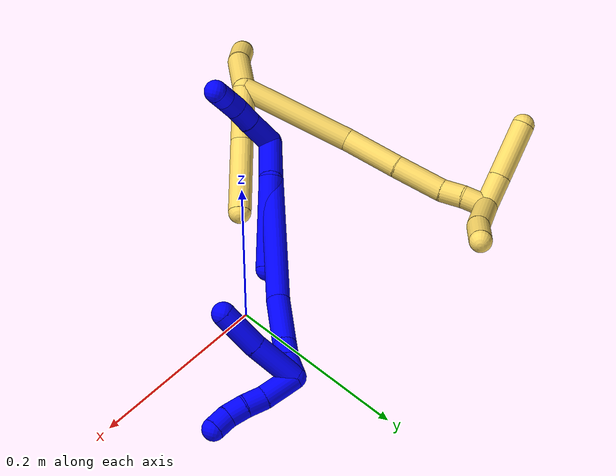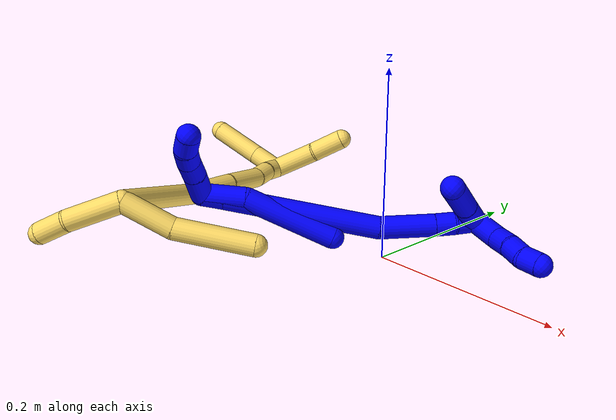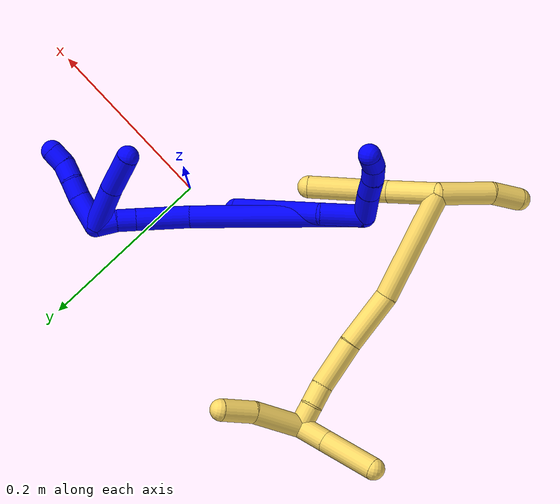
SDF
<sdf version="1.7">
 <world name="default">
  <model name="1">
   <static>0</static>
   <link name="1">
    <collision name="collision-cylinder-e_1_2_8">
     <pose>0.00512 0.013647 -0.019346 -2.52725 0.212998 -0.65011</pose>
     <geometry><cylinder><radius>0.0125</radius><length>0.048444</length></cylinder></geometry>
     <surface>
      <friction><ode><mu>1.16</mu><mu2>1.16</mu2><slip1>0</slip1><slip2>0</slip2></ode></friction>
      <contact><ode><kp>1e+06</kp><kd>1</kd><max_vel>0</max_vel><min_depth>0.001</min_depth></ode></contact>
     </surface>
    </collision>
    <visual name="visual-cylinder-e_1_2_8">
     <pose>0.00512 0.013647 -0.019346 -2.52725 0.212998 -0.65011</pose>
     <geometry><cylinder><radius>0.0125</radius><length>0.048444</length></cylinder></geometry>
     <material><ambient>0 0 1 1</ambient></material>
    </visual>
    <collision name="collision-cylinder-e_2_8_6">
     <pose>0.010983 0.044177 -0.086574 -2.80259 0.014629 -0.085427</pose>
     <geometry><cylinder><radius>0.0125</radius><length>0.101556</length></cylinder></geometry>
     <surface>
      <friction><ode><mu>1.16</mu><mu2>1.16</mu2><slip1>0</slip1><slip2>0</slip2></ode></friction>
      <contact><ode><kp>1e+06</kp><kd>1</kd><max_vel>0</max_vel><min_depth>0.001</min_depth></ode></contact>
     </surface>
    </collision>
    <visual name="visual-cylinder-e_2_8_6">
     <pose>0.010983 0.044177 -0.086574 -2.80259 0.014629 -0.085427</pose>
     <geometry><cylinder><radius>0.0125</radius><length>0.101556</length></cylinder></geometry>
     <material><ambient>0 0 1 1</ambient></material>
    </visual>
    <collision name="collision-cylinder-e_1_2_9">
     <pose>0.017057 -0.000542 0.007029 0.076928 1.17888 0.051459</pose>
     <geometry><cylinder><radius>0.0125</radius><length>0.036913</length></cylinder></geometry>
     <surface>
      <friction><ode><mu>1.16</mu><mu2>1.16</mu2><slip1>0</slip1><slip2>0</slip2></ode></friction>
      <contact><ode><kp>1e+06</kp><kd>1</kd><max_vel>0</max_vel><min_depth>0.001</min_depth></ode></contact>
     </surface>
    </collision>
    <visual name="visual-cylinder-e_1_2_9">
     <pose>0.017057 -0.000542 0.007029 0.076928 1.17888 0.051459</pose>
     <geometry><cylinder><radius>0.0125</radius><length>0.036913</length></cylinder></geometry>
     <material><ambient>0 0 1 1</ambient></material>
    </visual>
    <collision name="collision-cylinder-e_2_9_10">
     <pose>0.044342 -0.001694 0.018936 0.124406 1.12271 0.078293</pose>
     <geometry><cylinder><radius>0.0125</radius><length>0.022695</length></cylinder></geometry>
     <surface>
      <friction><ode><mu>1.16</mu><mu2>1.16</mu2><slip1>0</slip1><slip2>0</slip2></ode></friction>
      <contact><ode><kp>1e+06</kp><kd>1</kd><max_vel>0</max_vel><min_depth>0.001</min_depth></ode></contact>
     </surface>
    </collision>
    <visual name="visual-cylinder-e_2_9_10">
     <pose>0.044342 -0.001694 0.018936 0.124406 1.12271 0.078293</pose>
     <geometry><cylinder><radius>0.0125</radius><length>0.022695</length></cylinder></geometry>
     <material><ambient>0 0 1 1</ambient></material>
    </visual>
    <collision name="collision-cylinder-e_3_10_11">
     <pose>0.064136 -0.002334 0.026974 0.009524 1.25176 0.006884</pose>
     <geometry><cylinder><radius>0.0125</radius><length>0.020151</length></cylinder></geometry>
     <surface>
      <friction><ode><mu>1.16</mu><mu2>1.16</mu2><slip1>0</slip1><slip2>0</slip2></ode></friction>
      <contact><ode><kp>1e+06</kp><kd>1</kd><max_vel>0</max_vel><min_depth>0.001</min_depth></ode></contact>
     </surface>
    </collision>
    <visual name="visual-cylinder-e_3_10_11">
     <pose>0.064136 -0.002334 0.026974 0.009524 1.25176 0.006884</pose>
     <geometry><cylinder><radius>0.0125</radius><length>0.020151</length></cylinder></geometry>
     <material><ambient>0 0 1 1</ambient></material>
    </visual>
    <collision name="collision-cylinder-e_4_11_5">
     <pose>0.083139 0.000729 0.03209 -1.00695 1.20079 -0.721328</pose>
     <geometry><cylinder><radius>0.0125</radius><length>0.02024</length></cylinder></geometry>
     <surface>
      <friction><ode><mu>1.16</mu><mu2>1.16</mu2><slip1>0</slip1><slip2>0</slip2></ode></friction>
      <contact><ode><kp>1e+06</kp><kd>1</kd><max_vel>0</max_vel><min_depth>0.001</min_depth></ode></contact>
     </surface>
    </collision>
    <visual name="visual-cylinder-e_4_11_5">
     <pose>0.083139 0.000729 0.03209 -1.00695 1.20079 -0.721328</pose>
     <geometry><cylinder><radius>0.0125</radius><length>0.02024</length></cylinder></geometry>
     <material><ambient>0 0 1 1</ambient></material>
    </visual>
    <collision name="collision-cylinder-e_1_2_12">
     <pose>0.001744 0.00656 -0.010443 -2.58071 0.140483 -0.479154</pose>
     <geometry><cylinder><radius>0.0125</radius><length>0.02491</length></cylinder></geometry>
     <surface>
      <friction><ode><mu>1.16</mu><mu2>1.16</mu2><slip1>0</slip1><slip2>0</slip2></ode></friction>
      <contact><ode><kp>1e+06</kp><kd>1</kd><max_vel>0</max_vel><min_depth>0.001</min_depth></ode></contact>
     </surface>
    </collision>
    <visual name="visual-cylinder-e_1_2_12">
     <pose>0.001744 0.00656 -0.010443 -2.58071 0.140483 -0.479154</pose>
     <geometry><cylinder><radius>0.0125</radius><length>0.02491</length></cylinder></geometry>
     <material><ambient>0 0 1 1</ambient></material>
    </visual>
    <collision name="collision-cylinder-e_2_12_13">
     <pose>0.012299 0.057565 -0.092678 -2.58726 0.103973 -0.361805</pose>
     <geometry><cylinder><radius>0.0125</radius><length>0.16979</length></cylinder></geometry>
     <surface>
      <friction><ode><mu>1.16</mu><mu2>1.16</mu2><slip1>0</slip1><slip2>0</slip2></ode></friction>
      <contact><ode><kp>1e+06</kp><kd>1</kd><max_vel>0</max_vel><min_depth>0.001</min_depth></ode></contact>
     </surface>
    </collision>
    <visual name="visual-cylinder-e_2_12_13">
     <pose>0.012299 0.057565 -0.092678 -2.58726 0.103973 -0.361805</pose>
     <geometry><cylinder><radius>0.0125</radius><length>0.16979</length></cylinder></geometry>
     <material><ambient>0 0 1 1</ambient></material>
    </visual>
    <collision name="collision-cylinder-e_3_13_14">
     <pose>0.027116 0.122602 -0.18559 -2.36885 0.200878 -0.485668</pose>
     <geometry><cylinder><radius>0.0125</radius><length>0.060205</length></cylinder></geometry>
     <surface>
      <friction><ode><mu>1.16</mu><mu2>1.16</mu2><slip1>0</slip1><slip2>0</slip2></ode></friction>
      <contact><ode><kp>1e+06</kp><kd>1</kd><max_vel>0</max_vel><min_depth>0.001</min_depth></ode></contact>
     </surface>
    </collision>
    <visual name="visual-cylinder-e_3_13_14">
     <pose>0.027116 0.122602 -0.18559 -2.36885 0.200878 -0.485668</pose>
     <geometry><cylinder><radius>0.0125</radius><length>0.060205</length></cylinder></geometry>
     <material><ambient>0 0 1 1</ambient></material>
    </visual>
    <collision name="collision-cylinder-e_4_14_15">
     <pose>0.035387 0.150704 -0.213899 -2.33441 0.21447 -0.493879</pose>
     <geometry><cylinder><radius>0.0125</radius><length>0.02128</length></cylinder></geometry>
     <surface>
      <friction><ode><mu>1.16</mu><mu2>1.16</mu2><slip1>0</slip1><slip2>0</slip2></ode></friction>
      <contact><ode><kp>1e+06</kp><kd>1</kd><max_vel>0</max_vel><min_depth>0.001</min_depth></ode></contact>
     </surface>
    </collision>
    <visual name="visual-cylinder-e_4_14_15">
     <pose>0.035387 0.150704 -0.213899 -2.33441 0.21447 -0.493879</pose>
     <geometry><cylinder><radius>0.0125</radius><length>0.02128</length></cylinder></geometry>
     <material><ambient>0 0 1 1</ambient></material>
    </visual>
    <collision name="collision-cylinder-e_5_15_1">
     <pose>0.038285 0.167486 -0.228532 -2.24719 0.053272 -0.110985</pose>
     <geometry><cylinder><radius>0.0125</radius><length>0.023816</length></cylinder></geometry>
     <surface>
      <friction><ode><mu>1.16</mu><mu2>1.16</mu2><slip1>0</slip1><slip2>0</slip2></ode></friction>
      <contact><ode><kp>1e+06</kp><kd>1</kd><max_vel>0</max_vel><min_depth>0.001</min_depth></ode></contact>
     </surface>
    </collision>
    <visual name="visual-cylinder-e_5_15_1">
     <pose>0.038285 0.167486 -0.228532 -2.24719 0.053272 -0.110985</pose>
     <geometry><cylinder><radius>0.0125</radius><length>0.023816</length></cylinder></geometry>
     <material><ambient>0 0 1 1</ambient></material>
    </visual>
    <collision name="collision-cylinder-e_1_1_16">
     <pose>0.050701 0.171302 -0.249753 2.76444 0.6717 2.14097</pose>
     <geometry><cylinder><radius>0.0125</radius><length>0.037863</length></cylinder></geometry>
     <surface>
      <friction><ode><mu>1.16</mu><mu2>1.16</mu2><slip1>0</slip1><slip2>0</slip2></ode></friction>
      <contact><ode><kp>1e+06</kp><kd>1</kd><max_vel>0</max_vel><min_depth>0.001</min_depth></ode></contact>
     </surface>
    </collision>
    <visual name="visual-cylinder-e_1_1_16">
     <pose>0.050701 0.171302 -0.249753 2.76444 0.6717 2.14097</pose>
     <geometry><cylinder><radius>0.0125</radius><length>0.037863</length></cylinder></geometry>
     <material><ambient>0 0 1 1</ambient></material>
    </visual>
    <collision name="collision-cylinder-e_2_16_17">
     <pose>0.070466 0.162547 -0.269925 2.66546 0.837351 2.14307</pose>
     <geometry><cylinder><radius>0.0125</radius><length>0.021495</length></cylinder></geometry>
     <surface>
      <friction><ode><mu>1.16</mu><mu2>1.16</mu2><slip1>0</slip1><slip2>0</slip2></ode></friction>
      <contact><ode><kp>1e+06</kp><kd>1</kd><max_vel>0</max_vel><min_depth>0.001</min_depth></ode></contact>
     </surface>
    </collision>
    <visual name="visual-cylinder-e_2_16_17">
     <pose>0.070466 0.162547 -0.269925 2.66546 0.837351 2.14307</pose>
     <geometry><cylinder><radius>0.0125</radius><length>0.021495</length></cylinder></geometry>
     <material><ambient>0 0 1 1</ambient></material>
    </visual>
    <collision name="collision-cylinder-e_3_17_18">
     <pose>0.084899 0.155527 -0.283443 2.6601 0.676162 1.92242</pose>
     <geometry><cylinder><radius>0.0125</radius><length>0.020609</length></cylinder></geometry>
     <surface>
      <friction><ode><mu>1.16</mu><mu2>1.16</mu2><slip1>0</slip1><slip2>0</slip2></ode></friction>
      <contact><ode><kp>1e+06</kp><kd>1</kd><max_vel>0</max_vel><min_depth>0.001</min_depth></ode></contact>
     </surface>
    </collision>
    <visual name="visual-cylinder-e_3_17_18">
     <pose>0.084899 0.155527 -0.283443 2.6601 0.676162 1.92242</pose>
     <geometry><cylinder><radius>0.0125</radius><length>0.020609</length></cylinder></geometry>
     <material><ambient>0 0 1 1</ambient></material>
    </visual>
    <collision name="collision-cylinder-e_4_18_4">
     <pose>0.097717 0.15129 -0.29828 3.07488 0.689175 2.95617</pose>
     <geometry><cylinder><radius>0.0125</radius><length>0.020033</length></cylinder></geometry>
     <surface>
      <friction><ode><mu>1.16</mu><mu2>1.16</mu2><slip1>0</slip1><slip2>0</slip2></ode></friction>
      <contact><ode><kp>1e+06</kp><kd>1</kd><max_vel>0</max_vel><min_depth>0.001</min_depth></ode></contact>
     </surface>
    </collision>
    <visual name="visual-cylinder-e_4_18_4">
     <pose>0.097717 0.15129 -0.29828 3.07488 0.689175 2.95617</pose>
     <geometry><cylinder><radius>0.0125</radius><length>0.020033</length></cylinder></geometry>
     <material><ambient>0 0 1 1</ambient></material>
    </visual>
    <collision name="collision-cylinder-e_1_1_19">
     <pose>0.060582 0.166775 -0.225308 0.752327 0.977405 0.414013</pose>
     <geometry><cylinder><radius>0.0125</radius><length>0.052258</length></cylinder></geometry>
     <surface>
      <friction><ode><mu>1.16</mu><mu2>1.16</mu2><slip1>0</slip1><slip2>0</slip2></ode></friction>
      <contact><ode><kp>1e+06</kp><kd>1</kd><max_vel>0</max_vel><min_depth>0.001</min_depth></ode></contact>
     </surface>
    </collision>
    <visual name="visual-cylinder-e_1_1_19">
     <pose>0.060582 0.166775 -0.225308 0.752327 0.977405 0.414013</pose>
     <geometry><cylinder><radius>0.0125</radius><length>0.052258</length></cylinder></geometry>
     <material><ambient>0 0 1 1</ambient></material>
    </visual>
    <collision name="collision-cylinder-e_2_19_3">
     <pose>0.101383 0.148927 -0.202738 0.583831 0.930226 0.299346</pose>
     <geometry><cylinder><radius>0.0125</radius><length>0.047742</length></cylinder></geometry>
     <surface>
      <friction><ode><mu>1.16</mu><mu2>1.16</mu2><slip1>0</slip1><slip2>0</slip2></ode></friction>
      <contact><ode><kp>1e+06</kp><kd>1</kd><max_vel>0</max_vel><min_depth>0.001</min_depth></ode></contact>
     </surface>
    </collision>
    <visual name="visual-cylinder-e_2_19_3">
     <pose>0.101383 0.148927 -0.202738 0.583831 0.930226 0.299346</pose>
     <geometry><cylinder><radius>0.0125</radius><length>0.047742</length></cylinder></geometry>
     <material><ambient>0 0 1 1</ambient></material>
    </visual>
    <collision name="collision-sphere-3">
     <pose>0.120521 0.141063 -0.190834 0 -0 0</pose>
     <geometry><sphere><radius>0.0125</radius></sphere></geometry>
     <surface>
      <friction><ode><mu>1.16</mu><mu2>1.16</mu2><slip1>0</slip1><slip2>0</slip2></ode></friction>
      <contact><ode><kp>1e+06</kp><kd>1</kd><max_vel>0</max_vel><min_depth>0.001</min_depth></ode></contact>
     </surface>
    </collision>
    <visual name="visual-sphere-3">
     <pose>0.120521 0.141063 -0.190834 0 -0 0</pose>
     <geometry><sphere><radius>0.0125</radius></sphere></geometry>
     <material><ambient>0 0 1 1</ambient></material>
    </visual>
    <collision name="collision-sphere-19">
     <pose>0.082244 0.156791 -0.214641 0 -0 0</pose>
     <geometry><sphere><radius>0.0125</radius></sphere></geometry>
     <surface>
      <friction><ode><mu>1.16</mu><mu2>1.16</mu2><slip1>0</slip1><slip2>0</slip2></ode></friction>
      <contact><ode><kp>1e+06</kp><kd>1</kd><max_vel>0</max_vel><min_depth>0.001</min_depth></ode></contact>
     </surface>
    </collision>
    <visual name="visual-sphere-19">
     <pose>0.082244 0.156791 -0.214641 0 -0 0</pose>
     <geometry><sphere><radius>0.0125</radius></sphere></geometry>
     <material><ambient>0 0 1 1</ambient></material>
    </visual>
    <collision name="collision-sphere-11">
     <pose>0.073704 -0.002364 0.030134 0 -0 0</pose>
     <geometry><sphere><radius>0.0125</radius></sphere></geometry>
     <surface>
      <friction><ode><mu>1.16</mu><mu2>1.16</mu2><slip1>0</slip1><slip2>0</slip2></ode></friction>
      <contact><ode><kp>1e+06</kp><kd>1</kd><max_vel>0</max_vel><min_depth>0.001</min_depth></ode></contact>
     </surface>
    </collision>
    <visual name="visual-sphere-11">
     <pose>0.073704 -0.002364 0.030134 0 -0 0</pose>
     <geometry><sphere><radius>0.0125</radius></sphere></geometry>
     <material><ambient>0 0 1 1</ambient></material>
    </visual>
    <collision name="collision-sphere-10">
     <pose>0.054569 -0.002304 0.023814 0 -0 0</pose>
     <geometry><sphere><radius>0.0125</radius></sphere></geometry>
     <surface>
      <friction><ode><mu>1.16</mu><mu2>1.16</mu2><slip1>0</slip1><slip2>0</slip2></ode></friction>
      <contact><ode><kp>1e+06</kp><kd>1</kd><max_vel>0</max_vel><min_depth>0.001</min_depth></ode></contact>
     </surface>
    </collision>
    <visual name="visual-sphere-10">
     <pose>0.054569 -0.002304 0.023814 0 -0 0</pose>
     <geometry><sphere><radius>0.0125</radius></sphere></geometry>
     <material><ambient>0 0 1 1</ambient></material>
    </visual>
    <collision name="collision-sphere-6">
     <pose>0.011726 0.061061 -0.134457 0 -0 0</pose>
     <geometry><sphere><radius>0.0125</radius></sphere></geometry>
     <surface>
      <friction><ode><mu>1.16</mu><mu2>1.16</mu2><slip1>0</slip1><slip2>0</slip2></ode></friction>
      <contact><ode><kp>1e+06</kp><kd>1</kd><max_vel>0</max_vel><min_depth>0.001</min_depth></ode></contact>
     </surface>
    </collision>
    <visual name="visual-sphere-6">
     <pose>0.011726 0.061061 -0.134457 0 -0 0</pose>
     <geometry><sphere><radius>0.0125</radius></sphere></geometry>
     <material><ambient>0 0 1 1</ambient></material>
    </visual>
    <collision name="collision-sphere-9">
     <pose>0.034114 -0.001084 0.014058 0 -0 0</pose>
     <geometry><sphere><radius>0.0125</radius></sphere></geometry>
     <surface>
      <friction><ode><mu>1.16</mu><mu2>1.16</mu2><slip1>0</slip1><slip2>0</slip2></ode></friction>
      <contact><ode><kp>1e+06</kp><kd>1</kd><max_vel>0</max_vel><min_depth>0.001</min_depth></ode></contact>
     </surface>
    </collision>
    <visual name="visual-sphere-9">
     <pose>0.034114 -0.001084 0.014058 0 -0 0</pose>
     <geometry><sphere><radius>0.0125</radius></sphere></geometry>
     <material><ambient>0 0 1 1</ambient></material>
    </visual>
    <collision name="collision-sphere-2">
     <geometry><sphere><radius>0.0125</radius></sphere></geometry>
     <surface>
      <friction><ode><mu>1.16</mu><mu2>1.16</mu2><slip1>0</slip1><slip2>0</slip2></ode></friction>
      <contact><ode><kp>1e+06</kp><kd>1</kd><max_vel>0</max_vel><min_depth>0.001</min_depth></ode></contact>
     </surface>
    </collision>
    <visual name="visual-sphere-2">
     <geometry><sphere><radius>0.0125</radius></sphere></geometry>
     <material><ambient>0 0 1 1</ambient></material>
    </visual>
    <collision name="collision-sphere-8">
     <pose>0.010241 0.027293 -0.038692 0 -0 0</pose>
     <geometry><sphere><radius>0.0125</radius></sphere></geometry>
     <surface>
      <friction><ode><mu>1.16</mu><mu2>1.16</mu2><slip1>0</slip1><slip2>0</slip2></ode></friction>
      <contact><ode><kp>1e+06</kp><kd>1</kd><max_vel>0</max_vel><min_depth>0.001</min_depth></ode></contact>
     </surface>
    </collision>
    <visual name="visual-sphere-8">
     <pose>0.010241 0.027293 -0.038692 0 -0 0</pose>
     <geometry><sphere><radius>0.0125</radius></sphere></geometry>
     <material><ambient>0 0 1 1</ambient></material>
    </visual>
    <collision name="collision-sphere-5">
     <pose>0.092574 0.003822 0.034046 0 -0 0</pose>
     <geometry><sphere><radius>0.0125</radius></sphere></geometry>
     <surface>
      <friction><ode><mu>1.16</mu><mu2>1.16</mu2><slip1>0</slip1><slip2>0</slip2></ode></friction>
      <contact><ode><kp>1e+06</kp><kd>1</kd><max_vel>0</max_vel><min_depth>0.001</min_depth></ode></contact>
     </surface>
    </collision>
    <visual name="visual-sphere-5">
     <pose>0.092574 0.003822 0.034046 0 -0 0</pose>
     <geometry><sphere><radius>0.0125</radius></sphere></geometry>
     <material><ambient>0 0 1 1</ambient></material>
    </visual>
    <collision name="collision-sphere-12">
     <pose>0.003488 0.01312 -0.020886 0 -0 0</pose>
     <geometry><sphere><radius>0.0125</radius></sphere></geometry>
     <surface>
      <friction><ode><mu>1.16</mu><mu2>1.16</mu2><slip1>0</slip1><slip2>0</slip2></ode></friction>
      <contact><ode><kp>1e+06</kp><kd>1</kd><max_vel>0</max_vel><min_depth>0.001</min_depth></ode></contact>
     </surface>
    </collision>
    <visual name="visual-sphere-12">
     <pose>0.003488 0.01312 -0.020886 0 -0 0</pose>
     <geometry><sphere><radius>0.0125</radius></sphere></geometry>
     <material><ambient>0 0 1 1</ambient></material>
    </visual>
    <collision name="collision-sphere-13">
     <pose>0.02111 0.10201 -0.16447 0 -0 0</pose>
     <geometry><sphere><radius>0.0125</radius></sphere></geometry>
     <surface>
      <friction><ode><mu>1.16</mu><mu2>1.16</mu2><slip1>0</slip1><slip2>0</slip2></ode></friction>
      <contact><ode><kp>1e+06</kp><kd>1</kd><max_vel>0</max_vel><min_depth>0.001</min_depth></ode></contact>
     </surface>
    </collision>
    <visual name="visual-sphere-13">
     <pose>0.02111 0.10201 -0.16447 0 -0 0</pose>
     <geometry><sphere><radius>0.0125</radius></sphere></geometry>
     <material><ambient>0 0 1 1</ambient></material>
    </visual>
    <collision name="collision-sphere-14">
     <pose>0.033122 0.143194 -0.20671 0 -0 0</pose>
     <geometry><sphere><radius>0.0125</radius></sphere></geometry>
     <surface>
      <friction><ode><mu>1.16</mu><mu2>1.16</mu2><slip1>0</slip1><slip2>0</slip2></ode></friction>
      <contact><ode><kp>1e+06</kp><kd>1</kd><max_vel>0</max_vel><min_depth>0.001</min_depth></ode></contact>
     </surface>
    </collision>
    <visual name="visual-sphere-14">
     <pose>0.033122 0.143194 -0.20671 0 -0 0</pose>
     <geometry><sphere><radius>0.0125</radius></sphere></geometry>
     <material><ambient>0 0 1 1</ambient></material>
    </visual>
    <collision name="collision-sphere-15">
     <pose>0.037651 0.158213 -0.221088 0 -0 0</pose>
     <geometry><sphere><radius>0.0125</radius></sphere></geometry>
     <surface>
      <friction><ode><mu>1.16</mu><mu2>1.16</mu2><slip1>0</slip1><slip2>0</slip2></ode></friction>
      <contact><ode><kp>1e+06</kp><kd>1</kd><max_vel>0</max_vel><min_depth>0.001</min_depth></ode></contact>
     </surface>
    </collision>
    <visual name="visual-sphere-15">
     <pose>0.037651 0.158213 -0.221088 0 -0 0</pose>
     <geometry><sphere><radius>0.0125</radius></sphere></geometry>
     <material><ambient>0 0 1 1</ambient></material>
    </visual>
    <collision name="collision-sphere-1">
     <pose>0.038919 0.176759 -0.235976 0 -0 0</pose>
     <geometry><sphere><radius>0.0125</radius></sphere></geometry>
     <surface>
      <friction><ode><mu>1.16</mu><mu2>1.16</mu2><slip1>0</slip1><slip2>0</slip2></ode></friction>
      <contact><ode><kp>1e+06</kp><kd>1</kd><max_vel>0</max_vel><min_depth>0.001</min_depth></ode></contact>
     </surface>
    </collision>
    <visual name="visual-sphere-1">
     <pose>0.038919 0.176759 -0.235976 0 -0 0</pose>
     <geometry><sphere><radius>0.0125</radius></sphere></geometry>
     <material><ambient>0 0 1 1</ambient></material>
    </visual>
    <collision name="collision-sphere-18">
     <pose>0.091347 0.151805 -0.290566 0 -0 0</pose>
     <geometry><sphere><radius>0.0125</radius></sphere></geometry>
     <surface>
      <friction><ode><mu>1.16</mu><mu2>1.16</mu2><slip1>0</slip1><slip2>0</slip2></ode></friction>
      <contact><ode><kp>1e+06</kp><kd>1</kd><max_vel>0</max_vel><min_depth>0.001</min_depth></ode></contact>
     </surface>
    </collision>
    <visual name="visual-sphere-18">
     <pose>0.091347 0.151805 -0.290566 0 -0 0</pose>
     <geometry><sphere><radius>0.0125</radius></sphere></geometry>
     <material><ambient>0 0 1 1</ambient></material>
    </visual>
    <collision name="collision-sphere-16">
     <pose>0.062482 0.165845 -0.26353 0 -0 0</pose>
     <geometry><sphere><radius>0.0125</radius></sphere></geometry>
     <surface>
      <friction><ode><mu>1.16</mu><mu2>1.16</mu2><slip1>0</slip1><slip2>0</slip2></ode></friction>
      <contact><ode><kp>1e+06</kp><kd>1</kd><max_vel>0</max_vel><min_depth>0.001</min_depth></ode></contact>
     </surface>
    </collision>
    <visual name="visual-sphere-16">
     <pose>0.062482 0.165845 -0.26353 0 -0 0</pose>
     <geometry><sphere><radius>0.0125</radius></sphere></geometry>
     <material><ambient>0 0 1 1</ambient></material>
    </visual>
    <collision name="collision-sphere-17">
     <pose>0.07845 0.159249 -0.276319 0 -0 0</pose>
     <geometry><sphere><radius>0.0125</radius></sphere></geometry>
     <surface>
      <friction><ode><mu>1.16</mu><mu2>1.16</mu2><slip1>0</slip1><slip2>0</slip2></ode></friction>
      <contact><ode><kp>1e+06</kp><kd>1</kd><max_vel>0</max_vel><min_depth>0.001</min_depth></ode></contact>
     </surface>
    </collision>
    <visual name="visual-sphere-17">
     <pose>0.07845 0.159249 -0.276319 0 -0 0</pose>
     <geometry><sphere><radius>0.0125</radius></sphere></geometry>
     <material><ambient>0 0 1 1</ambient></material>
    </visual>
    <collision name="collision-sphere-4">
     <pose>0.104086 0.150774 -0.305993 0 -0 0</pose>
     <geometry><sphere><radius>0.0125</radius></sphere></geometry>
     <surface>
      <friction><ode><mu>1.16</mu><mu2>1.16</mu2><slip1>0</slip1><slip2>0</slip2></ode></friction>
      <contact><ode><kp>1e+06</kp><kd>1</kd><max_vel>0</max_vel><min_depth>0.001</min_depth></ode></contact>
     </surface>
    </collision>
    <visual name="visual-sphere-4">
     <pose>0.104086 0.150774 -0.305993 0 -0 0</pose>
     <geometry><sphere><radius>0.0125</radius></sphere></geometry>
     <material><ambient>0 0 1 1</ambient></material>
    </visual>
    <inertial>
     <pose>0.035402 0.08215 -0.124719 0 -0 0</pose>
     <mass>0.75</mass>
     <inertia>
      <ixx>0.000383</ixx>
      <ixy>0</ixy>
      <ixz>0</ixz>
      <iyy>-0.000535</iyy>
      <iyz>0</iyz>
      <izz>-0.000377</izz>
     </inertia>
    </inertial>
   </link>
   <pose>-0.158397 -0.115133 0.054442 0.688257 -0.685296 -0.473539</pose>
  </model>
  <model name="5">
   <static>0</static>
   <link name="5">
    <collision name="collision-cylinder-e_1_2_8">
     <pose>0.020926 0.008123 0.0202 -0.382345 0.765568 -0.155538</pose>
     <geometry><cylinder><radius>0.0125</radius><length>0.060396</length></cylinder></geometry>
     <surface>
      <friction><ode><mu>1.16</mu><mu2>1.16</mu2><slip1>0</slip1><slip2>0</slip2></ode></friction>
      <contact><ode><kp>1e+06</kp><kd>1</kd><max_vel>0</max_vel><min_depth>0.001</min_depth></ode></contact>
     </surface>
    </collision>
    <visual name="visual-cylinder-e_1_2_8">
     <pose>0.020926 0.008123 0.0202 -0.382345 0.765568 -0.155538</pose>
     <geometry><cylinder><radius>0.0125</radius><length>0.060396</length></cylinder></geometry>
     <material><ambient>1 0.858824 0.4 1</ambient></material>
    </visual>
    <collision name="collision-cylinder-e_2_8_6">
     <pose>0.062492 0.025985 0.078954 -0.247413 0.478797 -0.06068</pose>
     <geometry><cylinder><radius>0.0125</radius><length>0.089604</length></cylinder></geometry>
     <surface>
      <friction><ode><mu>1.16</mu><mu2>1.16</mu2><slip1>0</slip1><slip2>0</slip2></ode></friction>
      <contact><ode><kp>1e+06</kp><kd>1</kd><max_vel>0</max_vel><min_depth>0.001</min_depth></ode></contact>
     </surface>
    </collision>
    <visual name="visual-cylinder-e_2_8_6">
     <pose>0.062492 0.025985 0.078954 -0.247413 0.478797 -0.06068</pose>
     <geometry><cylinder><radius>0.0125</radius><length>0.089604</length></cylinder></geometry>
     <material><ambient>1 0.858824 0.4 1</ambient></material>
    </visual>
    <collision name="collision-cylinder-e_1_2_9">
     <pose>0.001572 -0.005524 -0.031509 2.96804 0.04911 0.550314</pose>
     <geometry><cylinder><radius>0.0125</radius><length>0.064057</length></cylinder></geometry>
     <surface>
      <friction><ode><mu>1.16</mu><mu2>1.16</mu2><slip1>0</slip1><slip2>0</slip2></ode></friction>
      <contact><ode><kp>1e+06</kp><kd>1</kd><max_vel>0</max_vel><min_depth>0.001</min_depth></ode></contact>
     </surface>
    </collision>
    <visual name="visual-cylinder-e_1_2_9">
     <pose>0.001572 -0.005524 -0.031509 2.96804 0.04911 0.550314</pose>
     <geometry><cylinder><radius>0.0125</radius><length>0.064057</length></cylinder></geometry>
     <material><ambient>1 0.858824 0.4 1</ambient></material>
    </visual>
    <collision name="collision-cylinder-e_2_9_5">
     <pose>0.005006 -0.010041 -0.080865 -3.08521 0.103765 -2.1467</pose>
     <geometry><cylinder><radius>0.0125</radius><length>0.035943</length></cylinder></geometry>
     <surface>
      <friction><ode><mu>1.16</mu><mu2>1.16</mu2><slip1>0</slip1><slip2>0</slip2></ode></friction>
      <contact><ode><kp>1e+06</kp><kd>1</kd><max_vel>0</max_vel><min_depth>0.001</min_depth></ode></contact>
     </surface>
    </collision>
    <visual name="visual-cylinder-e_2_9_5">
     <pose>0.005006 -0.010041 -0.080865 -3.08521 0.103765 -2.1467</pose>
     <geometry><cylinder><radius>0.0125</radius><length>0.035943</length></cylinder></geometry>
     <material><ambient>1 0.858824 0.4 1</ambient></material>
    </visual>
    <collision name="collision-cylinder-e_1_2_10">
     <pose>0.001391 0.062228 0.013555 -1.35632 0.021836 -0.017592</pose>
     <geometry><cylinder><radius>0.0125</radius><length>0.127405</length></cylinder></geometry>
     <surface>
      <friction><ode><mu>1.16</mu><mu2>1.16</mu2><slip1>0</slip1><slip2>0</slip2></ode></friction>
      <contact><ode><kp>1e+06</kp><kd>1</kd><max_vel>0</max_vel><min_depth>0.001</min_depth></ode></contact>
     </surface>
    </collision>
    <visual name="visual-cylinder-e_1_2_10">
     <pose>0.001391 0.062228 0.013555 -1.35632 0.021836 -0.017592</pose>
     <geometry><cylinder><radius>0.0125</radius><length>0.127405</length></cylinder></geometry>
     <material><ambient>1 0.858824 0.4 1</ambient></material>
    </visual>
    <collision name="collision-cylinder-e_2_10_11">
     <pose>0.00088 0.153544 0.041475 -1.11209 -0.05854 0.036386</pose>
     <geometry><cylinder><radius>0.0125</radius><length>0.064994</length></cylinder></geometry>
     <surface>
      <friction><ode><mu>1.16</mu><mu2>1.16</mu2><slip1>0</slip1><slip2>0</slip2></ode></friction>
      <contact><ode><kp>1e+06</kp><kd>1</kd><max_vel>0</max_vel><min_depth>0.001</min_depth></ode></contact>
     </surface>
    </collision>
    <visual name="visual-cylinder-e_2_10_11">
     <pose>0.00088 0.153544 0.041475 -1.11209 -0.05854 0.036386</pose>
     <geometry><cylinder><radius>0.0125</radius><length>0.064994</length></cylinder></geometry>
     <material><ambient>1 0.858824 0.4 1</ambient></material>
    </visual>
    <collision name="collision-cylinder-e_3_11_12">
     <pose>-0.001947 0.208744 0.066048 -1.19814 -0.033034 0.022555</pose>
     <geometry><cylinder><radius>0.0125</radius><length>0.056106</length></cylinder></geometry>
     <surface>
      <friction><ode><mu>1.16</mu><mu2>1.16</mu2><slip1>0</slip1><slip2>0</slip2></ode></friction>
      <contact><ode><kp>1e+06</kp><kd>1</kd><max_vel>0</max_vel><min_depth>0.001</min_depth></ode></contact>
     </surface>
    </collision>
    <visual name="visual-cylinder-e_3_11_12">
     <pose>-0.001947 0.208744 0.066048 -1.19814 -0.033034 0.022555</pose>
     <geometry><cylinder><radius>0.0125</radius><length>0.056106</length></cylinder></geometry>
     <material><ambient>1 0.858824 0.4 1</ambient></material>
    </visual>
    <collision name="collision-cylinder-e_4_12_13">
     <pose>-0.005872 0.246192 0.08052 -1.21096 -0.242658 0.1684</pose>
     <geometry><cylinder><radius>0.0125</radius><length>0.024952</length></cylinder></geometry>
     <surface>
      <friction><ode><mu>1.16</mu><mu2>1.16</mu2><slip1>0</slip1><slip2>0</slip2></ode></friction>
      <contact><ode><kp>1e+06</kp><kd>1</kd><max_vel>0</max_vel><min_depth>0.001</min_depth></ode></contact>
     </surface>
    </collision>
    <visual name="visual-cylinder-e_4_12_13">
     <pose>-0.005872 0.246192 0.08052 -1.21096 -0.242658 0.1684</pose>
     <geometry><cylinder><radius>0.0125</radius><length>0.024952</length></cylinder></geometry>
     <material><ambient>1 0.858824 0.4 1</ambient></material>
    </visual>
    <collision name="collision-cylinder-e_5_13_1">
     <pose>-0.010049 0.270207 0.088521 -1.28425 -0.088981 0.066563</pose>
     <geometry><cylinder><radius>0.0125</radius><length>0.026544</length></cylinder></geometry>
     <surface>
      <friction><ode><mu>1.16</mu><mu2>1.16</mu2><slip1>0</slip1><slip2>0</slip2></ode></friction>
      <contact><ode><kp>1e+06</kp><kd>1</kd><max_vel>0</max_vel><min_depth>0.001</min_depth></ode></contact>
     </surface>
    </collision>
    <visual name="visual-cylinder-e_5_13_1">
     <pose>-0.010049 0.270207 0.088521 -1.28425 -0.088981 0.066563</pose>
     <geometry><cylinder><radius>0.0125</radius><length>0.026544</length></cylinder></geometry>
     <material><ambient>1 0.858824 0.4 1</ambient></material>
    </visual>
    <collision name="collision-cylinder-e_1_1_14">
     <pose>-0.013713 0.277913 0.121885 0.166367 -0.082536 -0.006885</pose>
     <geometry><cylinder><radius>0.0125</radius><length>0.060289</length></cylinder></geometry>
     <surface>
      <friction><ode><mu>1.16</mu><mu2>1.16</mu2><slip1>0</slip1><slip2>0</slip2></ode></friction>
      <contact><ode><kp>1e+06</kp><kd>1</kd><max_vel>0</max_vel><min_depth>0.001</min_depth></ode></contact>
     </surface>
    </collision>
    <visual name="visual-cylinder-e_1_1_14">
     <pose>-0.013713 0.277913 0.121885 0.166367 -0.082536 -0.006885</pose>
     <geometry><cylinder><radius>0.0125</radius><length>0.060289</length></cylinder></geometry>
     <material><ambient>1 0.858824 0.4 1</ambient></material>
    </visual>
    <collision name="collision-cylinder-e_2_14_4">
     <pose>-0.018903 0.273517 0.171174 -0.029448 -0.136642 0.002015</pose>
     <geometry><cylinder><radius>0.0125</radius><length>0.039711</length></cylinder></geometry>
     <surface>
      <friction><ode><mu>1.16</mu><mu2>1.16</mu2><slip1>0</slip1><slip2>0</slip2></ode></friction>
      <contact><ode><kp>1e+06</kp><kd>1</kd><max_vel>0</max_vel><min_depth>0.001</min_depth></ode></contact>
     </surface>
    </collision>
    <visual name="visual-cylinder-e_2_14_4">
     <pose>-0.018903 0.273517 0.171174 -0.029448 -0.136642 0.002015</pose>
     <geometry><cylinder><radius>0.0125</radius><length>0.039711</length></cylinder></geometry>
     <material><ambient>1 0.858824 0.4 1</ambient></material>
    </visual>
    <collision name="collision-cylinder-e_1_1_15">
     <pose>-0.024396 0.285066 0.080636 -2.95636 -0.839113 2.731</pose>
     <geometry><cylinder><radius>0.0125</radius><length>0.035396</length></cylinder></geometry>
     <surface>
      <friction><ode><mu>1.16</mu><mu2>1.16</mu2><slip1>0</slip1><slip2>0</slip2></ode></friction>
      <contact><ode><kp>1e+06</kp><kd>1</kd><max_vel>0</max_vel><min_depth>0.001</min_depth></ode></contact>
     </surface>
    </collision>
    <visual name="visual-cylinder-e_1_1_15">
     <pose>-0.024396 0.285066 0.080636 -2.95636 -0.839113 2.731</pose>
     <geometry><cylinder><radius>0.0125</radius><length>0.035396</length></cylinder></geometry>
     <material><ambient>1 0.858824 0.4 1</ambient></material>
    </visual>
    <collision name="collision-cylinder-e_2_15_3">
     <pose>-0.061698 0.291114 0.047895 -2.96031 -0.843736 2.74198</pose>
     <geometry><cylinder><radius>0.0125</radius><length>0.064604</length></cylinder></geometry>
     <surface>
      <friction><ode><mu>1.16</mu><mu2>1.16</mu2><slip1>0</slip1><slip2>0</slip2></ode></friction>
      <contact><ode><kp>1e+06</kp><kd>1</kd><max_vel>0</max_vel><min_depth>0.001</min_depth></ode></contact>
     </surface>
    </collision>
    <visual name="visual-cylinder-e_2_15_3">
     <pose>-0.061698 0.291114 0.047895 -2.96031 -0.843736 2.74198</pose>
     <geometry><cylinder><radius>0.0125</radius><length>0.064604</length></cylinder></geometry>
     <material><ambient>1 0.858824 0.4 1</ambient></material>
    </visual>
    <collision name="collision-sphere-3">
     <pose>-0.085832 0.294985 0.026776 0 -0 0</pose>
     <geometry><sphere><radius>0.0125</radius></sphere></geometry>
     <surface>
      <friction><ode><mu>1.16</mu><mu2>1.16</mu2><slip1>0</slip1><slip2>0</slip2></ode></friction>
      <contact><ode><kp>1e+06</kp><kd>1</kd><max_vel>0</max_vel><min_depth>0.001</min_depth></ode></contact>
     </surface>
    </collision>
    <visual name="visual-sphere-3">
     <pose>-0.085832 0.294985 0.026776 0 -0 0</pose>
     <geometry><sphere><radius>0.0125</radius></sphere></geometry>
     <material><ambient>1 0.858824 0.4 1</ambient></material>
    </visual>
    <collision name="collision-sphere-15">
     <pose>-0.037564 0.287243 0.069013 0 -0 0</pose>
     <geometry><sphere><radius>0.0125</radius></sphere></geometry>
     <surface>
      <friction><ode><mu>1.16</mu><mu2>1.16</mu2><slip1>0</slip1><slip2>0</slip2></ode></friction>
      <contact><ode><kp>1e+06</kp><kd>1</kd><max_vel>0</max_vel><min_depth>0.001</min_depth></ode></contact>
     </surface>
    </collision>
    <visual name="visual-sphere-15">
     <pose>-0.037564 0.287243 0.069013 0 -0 0</pose>
     <geometry><sphere><radius>0.0125</radius></sphere></geometry>
     <material><ambient>1 0.858824 0.4 1</ambient></material>
    </visual>
    <collision name="collision-sphere-4">
     <pose>-0.021608 0.274096 0.190836 0 -0 0</pose>
     <geometry><sphere><radius>0.0125</radius></sphere></geometry>
     <surface>
      <friction><ode><mu>1.16</mu><mu2>1.16</mu2><slip1>0</slip1><slip2>0</slip2></ode></friction>
      <contact><ode><kp>1e+06</kp><kd>1</kd><max_vel>0</max_vel><min_depth>0.001</min_depth></ode></contact>
     </surface>
    </collision>
    <visual name="visual-sphere-4">
     <pose>-0.021608 0.274096 0.190836 0 -0 0</pose>
     <geometry><sphere><radius>0.0125</radius></sphere></geometry>
     <material><ambient>1 0.858824 0.4 1</ambient></material>
    </visual>
    <collision name="collision-sphere-14">
     <pose>-0.016198 0.272938 0.151512 0 -0 0</pose>
     <geometry><sphere><radius>0.0125</radius></sphere></geometry>
     <surface>
      <friction><ode><mu>1.16</mu><mu2>1.16</mu2><slip1>0</slip1><slip2>0</slip2></ode></friction>
      <contact><ode><kp>1e+06</kp><kd>1</kd><max_vel>0</max_vel><min_depth>0.001</min_depth></ode></contact>
     </surface>
    </collision>
    <visual name="visual-sphere-14">
     <pose>-0.016198 0.272938 0.151512 0 -0 0</pose>
     <geometry><sphere><radius>0.0125</radius></sphere></geometry>
     <material><ambient>1 0.858824 0.4 1</ambient></material>
    </visual>
    <collision name="collision-sphere-1">
     <pose>-0.011228 0.282888 0.092258 0 -0 0</pose>
     <geometry><sphere><radius>0.0125</radius></sphere></geometry>
     <surface>
      <friction><ode><mu>1.16</mu><mu2>1.16</mu2><slip1>0</slip1><slip2>0</slip2></ode></friction>
      <contact><ode><kp>1e+06</kp><kd>1</kd><max_vel>0</max_vel><min_depth>0.001</min_depth></ode></contact>
     </surface>
    </collision>
    <visual name="visual-sphere-1">
     <pose>-0.011228 0.282888 0.092258 0 -0 0</pose>
     <geometry><sphere><radius>0.0125</radius></sphere></geometry>
     <material><ambient>1 0.858824 0.4 1</ambient></material>
    </visual>
    <collision name="collision-sphere-13">
     <pose>-0.008869 0.257527 0.084785 0 -0 0</pose>
     <geometry><sphere><radius>0.0125</radius></sphere></geometry>
     <surface>
      <friction><ode><mu>1.16</mu><mu2>1.16</mu2><slip1>0</slip1><slip2>0</slip2></ode></friction>
      <contact><ode><kp>1e+06</kp><kd>1</kd><max_vel>0</max_vel><min_depth>0.001</min_depth></ode></contact>
     </surface>
    </collision>
    <visual name="visual-sphere-13">
     <pose>-0.008869 0.257527 0.084785 0 -0 0</pose>
     <geometry><sphere><radius>0.0125</radius></sphere></geometry>
     <material><ambient>1 0.858824 0.4 1</ambient></material>
    </visual>
    <collision name="collision-sphere-12">
     <pose>-0.002874 0.234858 0.076256 0 -0 0</pose>
     <geometry><sphere><radius>0.0125</radius></sphere></geometry>
     <surface>
      <friction><ode><mu>1.16</mu><mu2>1.16</mu2><slip1>0</slip1><slip2>0</slip2></ode></friction>
      <contact><ode><kp>1e+06</kp><kd>1</kd><max_vel>0</max_vel><min_depth>0.001</min_depth></ode></contact>
     </surface>
    </collision>
    <visual name="visual-sphere-12">
     <pose>-0.002874 0.234858 0.076256 0 -0 0</pose>
     <geometry><sphere><radius>0.0125</radius></sphere></geometry>
     <material><ambient>1 0.858824 0.4 1</ambient></material>
    </visual>
    <collision name="collision-sphere-11">
     <pose>-0.001021 0.182631 0.055839 0 -0 0</pose>
     <geometry><sphere><radius>0.0125</radius></sphere></geometry>
     <surface>
      <friction><ode><mu>1.16</mu><mu2>1.16</mu2><slip1>0</slip1><slip2>0</slip2></ode></friction>
      <contact><ode><kp>1e+06</kp><kd>1</kd><max_vel>0</max_vel><min_depth>0.001</min_depth></ode></contact>
     </surface>
    </collision>
    <visual name="visual-sphere-11">
     <pose>-0.001021 0.182631 0.055839 0 -0 0</pose>
     <geometry><sphere><radius>0.0125</radius></sphere></geometry>
     <material><ambient>1 0.858824 0.4 1</ambient></material>
    </visual>
    <collision name="collision-sphere-8">
     <pose>0.041852 0.016247 0.040401 0 -0 0</pose>
     <geometry><sphere><radius>0.0125</radius></sphere></geometry>
     <surface>
      <friction><ode><mu>1.16</mu><mu2>1.16</mu2><slip1>0</slip1><slip2>0</slip2></ode></friction>
      <contact><ode><kp>1e+06</kp><kd>1</kd><max_vel>0</max_vel><min_depth>0.001</min_depth></ode></contact>
     </surface>
    </collision>
    <visual name="visual-sphere-8">
     <pose>0.041852 0.016247 0.040401 0 -0 0</pose>
     <geometry><sphere><radius>0.0125</radius></sphere></geometry>
     <material><ambient>1 0.858824 0.4 1</ambient></material>
    </visual>
    <collision name="collision-sphere-2">
     <geometry><sphere><radius>0.0125</radius></sphere></geometry>
     <surface>
      <friction><ode><mu>1.16</mu><mu2>1.16</mu2><slip1>0</slip1><slip2>0</slip2></ode></friction>
      <contact><ode><kp>1e+06</kp><kd>1</kd><max_vel>0</max_vel><min_depth>0.001</min_depth></ode></contact>
     </surface>
    </collision>
    <visual name="visual-sphere-2">
     <geometry><sphere><radius>0.0125</radius></sphere></geometry>
     <material><ambient>1 0.858824 0.4 1</ambient></material>
    </visual>
    <collision name="collision-sphere-9">
     <pose>0.003145 -0.011048 -0.063019 0 -0 0</pose>
     <geometry><sphere><radius>0.0125</radius></sphere></geometry>
     <surface>
      <friction><ode><mu>1.16</mu><mu2>1.16</mu2><slip1>0</slip1><slip2>0</slip2></ode></friction>
      <contact><ode><kp>1e+06</kp><kd>1</kd><max_vel>0</max_vel><min_depth>0.001</min_depth></ode></contact>
     </surface>
    </collision>
    <visual name="visual-sphere-9">
     <pose>0.003145 -0.011048 -0.063019 0 -0 0</pose>
     <geometry><sphere><radius>0.0125</radius></sphere></geometry>
     <material><ambient>1 0.858824 0.4 1</ambient></material>
    </visual>
    <collision name="collision-sphere-6">
     <pose>0.083133 0.035723 0.117507 0 -0 0</pose>
     <geometry><sphere><radius>0.0125</radius></sphere></geometry>
     <surface>
      <friction><ode><mu>1.16</mu><mu2>1.16</mu2><slip1>0</slip1><slip2>0</slip2></ode></friction>
      <contact><ode><kp>1e+06</kp><kd>1</kd><max_vel>0</max_vel><min_depth>0.001</min_depth></ode></contact>
     </surface>
    </collision>
    <visual name="visual-sphere-6">
     <pose>0.083133 0.035723 0.117507 0 -0 0</pose>
     <geometry><sphere><radius>0.0125</radius></sphere></geometry>
     <material><ambient>1 0.858824 0.4 1</ambient></material>
    </visual>
    <collision name="collision-sphere-5">
     <pose>0.006868 -0.009034 -0.098712 0 -0 0</pose>
     <geometry><sphere><radius>0.0125</radius></sphere></geometry>
     <surface>
      <friction><ode><mu>1.16</mu><mu2>1.16</mu2><slip1>0</slip1><slip2>0</slip2></ode></friction>
      <contact><ode><kp>1e+06</kp><kd>1</kd><max_vel>0</max_vel><min_depth>0.001</min_depth></ode></contact>
     </surface>
    </collision>
    <visual name="visual-sphere-5">
     <pose>0.006868 -0.009034 -0.098712 0 -0 0</pose>
     <geometry><sphere><radius>0.0125</radius></sphere></geometry>
     <material><ambient>1 0.858824 0.4 1</ambient></material>
    </visual>
    <collision name="collision-sphere-10">
     <pose>0.002782 0.124456 0.02711 0 -0 0</pose>
     <geometry><sphere><radius>0.0125</radius></sphere></geometry>
     <surface>
      <friction><ode><mu>1.16</mu><mu2>1.16</mu2><slip1>0</slip1><slip2>0</slip2></ode></friction>
      <contact><ode><kp>1e+06</kp><kd>1</kd><max_vel>0</max_vel><min_depth>0.001</min_depth></ode></contact>
     </surface>
    </collision>
    <visual name="visual-sphere-10">
     <pose>0.002782 0.124456 0.02711 0 -0 0</pose>
     <geometry><sphere><radius>0.0125</radius></sphere></geometry>
     <material><ambient>1 0.858824 0.4 1</ambient></material>
    </visual>
    <inertial>
     <pose>0.000572 0.135404 0.047934 0 -0 0</pose>
     <mass>0.75</mass>
     <inertia>
      <ixx>0.000331</ixx>
      <ixy>0</ixy>
      <ixz>0</ixz>
      <iyy>0.00021</iyy>
      <iyz>0</iyz>
      <izz>-0.000242</izz>
     </inertia>
    </inertial>
   </link>
   <pose>-0.195852 -0.190917 0.054562 -0.709332 1.08828 -0.089906</pose>
  </model>
 </world>
</sdf>
